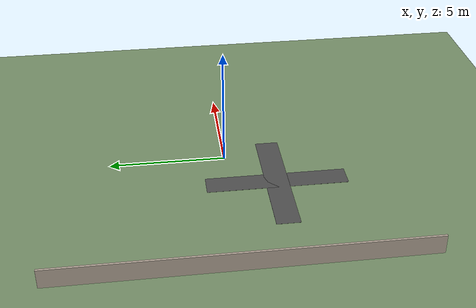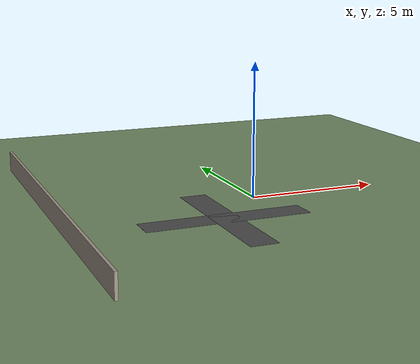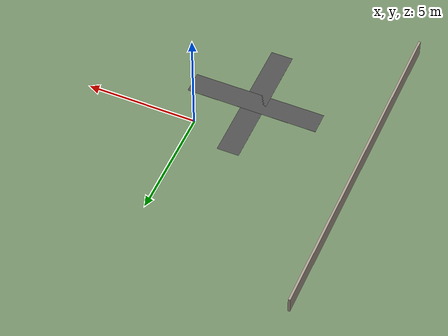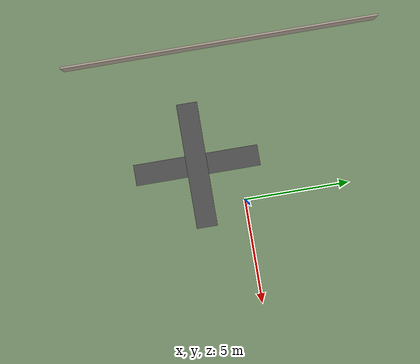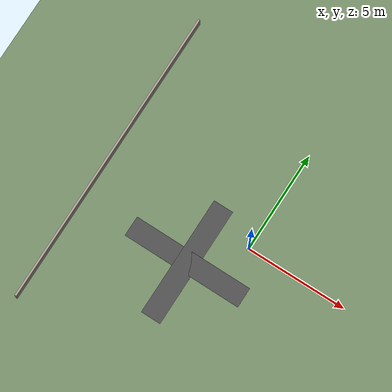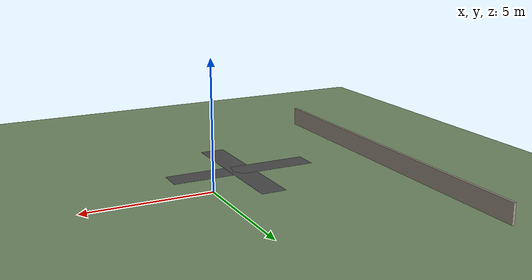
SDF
<sdf version="1.8">
 <world name="lmm_world">
  <model name="ground_plane">
   <static>true</static>
   <link name="link">
    <collision name="collision"><geometry><plane><normal>0 0 1</normal></plane></geometry></collision>
    <visual name="visual">
     <geometry><plane><normal>0 0 1</normal><size>100 100</size></plane></geometry>
     <material><ambient>0.4 0.5 0.35 1</ambient><diffuse>0.45 0.55 0.4 1</diffuse></material>
    </visual>
   </link>
  </model>
  <model name="wall_west">
   <static>true</static>
   <pose>-7.5 0 0.4 0 0 0</pose>
   <link name="link">
    <visual name="v">
     <geometry><box><size>0.1 15 0.8</size></box></geometry>
     <material><ambient>0.55 0.5 0.45 1</ambient><diffuse>0.65 0.6 0.55 1</diffuse></material>
    </visual>
    <collision name="c"><geometry><box><size>0.1 10 0.8</size></box></geometry></collision>
   </link>
  </model>
  <model name="road1">
   <static>true</static>
   <pose>-2 -2 0.003 0 0 0</pose>
   <link name="link">
    <visual name="v">
     <geometry><box><size>6 1 0.005</size></box></geometry>
     <material><ambient>0.25 0.25 0.25 1</ambient><diffuse>0.3 0.3 0.3 1</diffuse></material>
    </visual>
   </link>
  </model>
  <model name="road2">
   <static>true</static>
   <pose>-2 -2 0.003 0 0 1.5708</pose>
   <link name="link">
    <visual name="v">
     <geometry><box><size>6 1 0.005</size></box></geometry>
     <material><ambient>0.25 0.25 0.25 1</ambient><diffuse>0.3 0.3 0.3 1</diffuse></material>
    </visual>
   </link>
  </model>
 </world>
</sdf>
